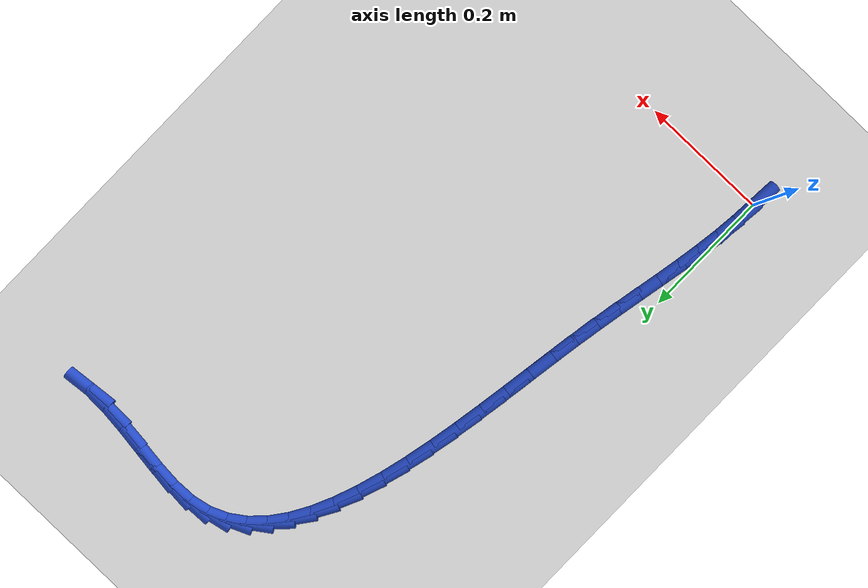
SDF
<sdf version="1.6">
 <world name="default">
  <model name="ground_plane">
   <static>1</static>
   <link name="link">
    <collision name="collision">
     <geometry><plane><normal>0 0 1</normal><size>100 100</size></plane></geometry>
     <surface><friction><ode><mu>100</mu><mu2>50</mu2></ode></friction></surface>
    </collision>
    <visual name="visual">
     <cast_shadows>0</cast_shadows>
     <geometry><plane><normal>0 0 1</normal><size>100 100</size></plane></geometry>
     <material>
      <script><uri>file://media/materials/scripts/gazebo.material</uri><name>Gazebo/WhiteGlow</name></script>
     </material>
    </visual>
   </link>
  </model>
  <model name="line">
   <link name="link_1">
    <pose>0.0022582850308093196 0.03516942774697094 0.01 0 1.57 1.4645341288310958</pose>
    <collision name="collision">
     <geometry><cylinder><radius>0.01</radius><length>0.08</length></cylinder></geometry>
    </collision>
    <visual name="visual">
     <material>
      <script><name>Gazebo/Blue</name><uri>file://media/materials/scripts/gazebo.material</uri></script>
     </material>
     <geometry><cylinder><radius>0.01</radius><length>0.08</length></cylinder></geometry>
    </visual>
   </link>
   <link name="link_2">
    <pose>0.005962830418224047 0.06990041833474252 0.01 0 1.57 1.4299234166727632</pose>
    <collision name="collision">
     <geometry><cylinder><radius>0.01</radius><length>0.08</length></cylinder></geometry>
    </collision>
    <visual name="visual">
     <material>
      <script><name>Gazebo/Blue</name><uri>file://media/materials/scripts/gazebo.material</uri></script>
     </material>
     <geometry><cylinder><radius>0.01</radius><length>0.08</length></cylinder></geometry>
    </visual>
   </link>
   <link name="link_3">
    <pose>0.010868365868213374 0.10449217927784483 0.01 0 1.57 1.4037080650045268</pose>
    <collision name="collision">
     <geometry><cylinder><radius>0.01</radius><length>0.08</length></cylinder></geometry>
    </collision>
    <visual name="visual">
     <material>
      <script><name>Gazebo/Blue</name><uri>file://media/materials/scripts/gazebo.material</uri></script>
     </material>
     <geometry><cylinder><radius>0.01</radius><length>0.08</length></cylinder></geometry>
    </visual>
   </link>
   <link name="link_4">
    <pose>0.016729621086746478 0.139243918090808 0.01 0 1.57 1.386281005507231</pose>
    <collision name="collision">
     <geometry><cylinder><radius>0.01</radius><length>0.08</length></cylinder></geometry>
    </collision>
    <visual name="visual">
     <material>
      <script><name>Gazebo/Blue</name><uri>file://media/materials/scripts/gazebo.material</uri></script>
     </material>
     <geometry><cylinder><radius>0.01</radius><length>0.08</length></cylinder></geometry>
    </visual>
   </link>
   <link name="link_5">
    <pose>0.023301325779792527 0.17445484228816205 0.01 0 1.57 1.377600673530358</pose>
    <collision name="collision">
     <geometry><cylinder><radius>0.01</radius><length>0.08</length></cylinder></geometry>
    </collision>
    <visual name="visual">
     <material>
      <script><name>Gazebo/Blue</name><uri>file://media/materials/scripts/gazebo.material</uri></script>
     </material>
     <geometry><cylinder><radius>0.01</radius><length>0.08</length></cylinder></geometry>
    </visual>
   </link>
   <link name="link_6">
    <pose>0.030338209653320725 0.21042415938443707 0.01 0 1.57 1.3772624265243338</pose>
    <collision name="collision">
     <geometry><cylinder><radius>0.01</radius><length>0.08</length></cylinder></geometry>
    </collision>
    <visual name="visual">
     <material>
      <script><name>Gazebo/Blue</name><uri>file://media/materials/scripts/gazebo.material</uri></script>
     </material>
     <geometry><cylinder><radius>0.01</radius><length>0.08</length></cylinder></geometry>
    </visual>
   </link>
   <link name="link_7">
    <pose>0.03759500241330024 0.24745107689416318 0.01 0 1.57 1.3845806577519995</pose>
    <collision name="collision">
     <geometry><cylinder><radius>0.01</radius><length>0.08</length></cylinder></geometry>
    </collision>
    <visual name="visual">
     <material>
      <script><name>Gazebo/Blue</name><uri>file://media/materials/scripts/gazebo.material</uri></script>
     </material>
     <geometry><cylinder><radius>0.01</radius><length>0.08</length></cylinder></geometry>
    </visual>
   </link>
   <link name="link_8">
    <pose>0.04482643376570025 0.2858348023318704 0.01 0 1.57 1.398498611856168</pose>
    <collision name="collision">
     <geometry><cylinder><radius>0.01</radius><length>0.08</length></cylinder></geometry>
    </collision>
    <visual name="visual">
     <material>
      <script><name>Gazebo/Blue</name><uri>file://media/materials/scripts/gazebo.material</uri></script>
     </material>
     <geometry><cylinder><radius>0.01</radius><length>0.08</length></cylinder></geometry>
    </visual>
   </link>
   <link name="link_9">
    <pose>0.05179271196097982 0.3258655512602931 0.01 0 1.57 1.4123223762062587</pose>
    <collision name="collision">
     <geometry><cylinder><radius>0.01</radius><length>0.08</length></cylinder></geometry>
    </collision>
    <visual name="visual">
     <material>
      <script><name>Gazebo/Blue</name><uri>file://media/materials/scripts/gazebo.material</uri></script>
     </material>
     <geometry><cylinder><radius>0.01</radius><length>0.08</length></cylinder></geometry>
    </visual>
   </link>
   <link name="link_10">
    <pose>0.058448721866371886 0.3675140159167599 0.01 0 1.57 1.4192214395373546</pose>
    <collision name="collision">
     <geometry><cylinder><radius>0.01</radius><length>0.08</length></cylinder></geometry>
    </collision>
    <visual name="visual">
     <material>
      <script><name>Gazebo/Blue</name><uri>file://media/materials/scripts/gazebo.material</uri></script>
     </material>
     <geometry><cylinder><radius>0.01</radius><length>0.08</length></cylinder></geometry>
    </visual>
   </link>
   <link name="link_11">
    <pose>0.06499213408295745 0.41035240357247577 0.01 0 1.57 1.4194965987739743</pose>
    <collision name="collision">
     <geometry><cylinder><radius>0.01</radius><length>0.08</length></cylinder></geometry>
    </collision>
    <visual name="visual">
     <material>
      <script><name>Gazebo/Blue</name><uri>file://media/materials/scripts/gazebo.material</uri></script>
     </material>
     <geometry><cylinder><radius>0.01</radius><length>0.08</length></cylinder></geometry>
    </visual>
   </link>
   <link name="link_12">
    <pose>0.07163586692038312 0.4539278953880295 0.01 0 1.57 1.4134883770372186</pose>
    <collision name="collision">
     <geometry><cylinder><radius>0.01</radius><length>0.08</length></cylinder></geometry>
    </collision>
    <visual name="visual">
     <material>
      <script><name>Gazebo/Blue</name><uri>file://media/materials/scripts/gazebo.material</uri></script>
     </material>
     <geometry><cylinder><radius>0.01</radius><length>0.08</length></cylinder></geometry>
    </visual>
   </link>
   <link name="link_13">
    <pose>0.07859283868829553 0.4977876725240108 0.01 0 1.57 1.4011692170362267</pose>
    <collision name="collision">
     <geometry><cylinder><radius>0.01</radius><length>0.08</length></cylinder></geometry>
    </collision>
    <visual name="visual">
     <material>
      <script><name>Gazebo/Blue</name><uri>file://media/materials/scripts/gazebo.material</uri></script>
     </material>
     <geometry><cylinder><radius>0.01</radius><length>0.08</length></cylinder></geometry>
    </visual>
   </link>
   <link name="link_14">
    <pose>0.08607596769634124 0.5414789161410082 0.01 0 1.57 1.38216224565192</pose>
    <collision name="collision">
     <geometry><cylinder><radius>0.01</radius><length>0.08</length></cylinder></geometry>
    </collision>
    <visual name="visual">
     <material>
      <script><name>Gazebo/Blue</name><uri>file://media/materials/scripts/gazebo.material</uri></script>
     </material>
     <geometry><cylinder><radius>0.01</radius><length>0.08</length></cylinder></geometry>
    </visual>
   </link>
   <link name="link_15">
    <pose>0.0942981722541669 0.5845488073996107 0.01 0 1.57 1.3557196412298682</pose>
    <collision name="collision">
     <geometry><cylinder><radius>0.01</radius><length>0.08</length></cylinder></geometry>
    </collision>
    <visual name="visual">
     <material>
      <script><name>Gazebo/Blue</name><uri>file://media/materials/scripts/gazebo.material</uri></script>
     </material>
     <geometry><cylinder><radius>0.01</radius><length>0.08</length></cylinder></geometry>
    </visual>
   </link>
   <link name="link_16">
    <pose>0.10347237067141912 0.6265445274604079 0.01 0 1.57 1.320663005502969</pose>
    <collision name="collision">
     <geometry><cylinder><radius>0.01</radius><length>0.08</length></cylinder></geometry>
    </collision>
    <visual name="visual">
     <material>
      <script><name>Gazebo/Blue</name><uri>file://media/materials/scripts/gazebo.material</uri></script>
     </material>
     <geometry><cylinder><radius>0.01</radius><length>0.08</length></cylinder></geometry>
    </visual>
   </link>
   <link name="link_17">
    <pose>0.11381148125774447 0.6670132574839885 0.01 0 1.57 1.2752860189761903</pose>
    <collision name="collision">
     <geometry><cylinder><radius>0.01</radius><length>0.08</length></cylinder></geometry>
    </collision>
    <visual name="visual">
     <material>
      <script><name>Gazebo/Blue</name><uri>file://media/materials/scripts/gazebo.material</uri></script>
     </material>
     <geometry><cylinder><radius>0.01</radius><length>0.08</length></cylinder></geometry>
    </visual>
   </link>
   <link name="link_18">
    <pose>0.12552842232278957 0.7055021786309416 0.01 0 1.57 1.2172250605914776</pose>
    <collision name="collision">
     <geometry><cylinder><radius>0.01</radius><length>0.08</length></cylinder></geometry>
    </collision>
    <visual name="visual">
     <material>
      <script><name>Gazebo/Blue</name><uri>file://media/materials/scripts/gazebo.material</uri></script>
     </material>
     <geometry><cylinder><radius>0.01</radius><length>0.08</length></cylinder></geometry>
    </visual>
   </link>
   <link name="link_19">
    <pose>0.1388361121762011 0.7415584720618565 0.01 0 1.57 1.1433271860363068</pose>
    <collision name="collision">
     <geometry><cylinder><radius>0.01</radius><length>0.08</length></cylinder></geometry>
    </collision>
    <visual name="visual">
     <material>
      <script><name>Gazebo/Blue</name><uri>file://media/materials/scripts/gazebo.material</uri></script>
     </material>
     <geometry><cylinder><radius>0.01</radius><length>0.08</length></cylinder></geometry>
    </visual>
   </link>
   <link name="link_20">
    <pose>0.1539474691276256 0.7747293189373222 0.01 0 1.57 1.0496120278835792</pose>
    <collision name="collision">
     <geometry><cylinder><radius>0.01</radius><length>0.08</length></cylinder></geometry>
    </collision>
    <visual name="visual">
     <material>
      <script><name>Gazebo/Blue</name><uri>file://media/materials/scripts/gazebo.material</uri></script>
     </material>
     <geometry><cylinder><radius>0.01</radius><length>0.08</length></cylinder></geometry>
    </visual>
   </link>
   <link name="link_21">
    <pose>0.17107541148670966 0.8045619004179276 0.01 0 1.57 0.9315772098061283</pose>
    <collision name="collision">
     <geometry><cylinder><radius>0.01</radius><length>0.08</length></cylinder></geometry>
    </collision>
    <visual name="visual">
     <material>
      <script><name>Gazebo/Blue</name><uri>file://media/materials/scripts/gazebo.material</uri></script>
     </material>
     <geometry><cylinder><radius>0.01</radius><length>0.08</length></cylinder></geometry>
    </visual>
   </link>
   <link name="link_22">
    <pose>0.19043285756309994 0.8306033976642618 0.01 0 1.57 0.7853460059880488</pose>
    <collision name="collision">
     <geometry><cylinder><radius>0.01</radius><length>0.08</length></cylinder></geometry>
    </collision>
    <visual name="visual">
     <material>
      <script><name>Gazebo/Blue</name><uri>file://media/materials/scripts/gazebo.material</uri></script>
     </material>
     <geometry><cylinder><radius>0.01</radius><length>0.08</length></cylinder></geometry>
    </visual>
   </link>
   <link name="link_23">
    <pose>0.21223272566644308 0.8524009918369142 0.01 0 1.57 0.6102380234872056</pose>
    <collision name="collision">
     <geometry><cylinder><radius>0.01</radius><length>0.08</length></cylinder></geometry>
    </collision>
    <visual name="visual">
     <material>
      <script><name>Gazebo/Blue</name><uri>file://media/materials/scripts/gazebo.material</uri></script>
     </material>
     <geometry><cylinder><radius>0.01</radius><length>0.08</length></cylinder></geometry>
    </visual>
   </link>
   <link name="link_24">
    <pose>0.23668793410638558 0.8695018640964738 0.01 0 1.57 0.4123279480872916</pose>
    <collision name="collision">
     <geometry><cylinder><radius>0.01</radius><length>0.08</length></cylinder></geometry>
    </collision>
    <visual name="visual">
     <material>
      <script><name>Gazebo/Blue</name><uri>file://media/materials/scripts/gazebo.material</uri></script>
     </material>
     <geometry><cylinder><radius>0.01</radius><length>0.08</length></cylinder></geometry>
    </visual>
   </link>
   <link name="link_25">
    <pose>0.2640114011925742 0.8814531956035295 0.01 0 1.57 0.20617487817737432</pose>
    <collision name="collision">
     <geometry><cylinder><radius>0.01</radius><length>0.08</length></cylinder></geometry>
    </collision>
    <visual name="visual">
     <material>
      <script><name>Gazebo/Blue</name><uri>file://media/materials/scripts/gazebo.material</uri></script>
     </material>
     <geometry><cylinder><radius>0.01</radius><length>0.08</length></cylinder></geometry>
    </visual>
   </link>
   <link name="link_26">
    <pose>0.29441197622579507 0.8878113781816854 0.01 0 1.57 0.0316262559008546</pose>
    <collision name="collision">
     <geometry><cylinder><radius>0.01</radius><length>0.08</length></cylinder></geometry>
    </collision>
    <visual name="visual">
     <material>
      <script><name>Gazebo/Blue</name><uri>file://media/materials/scripts/gazebo.material</uri></script>
     </material>
     <geometry><cylinder><radius>0.01</radius><length>0.08</length></cylinder></geometry>
    </visual>
   </link>
   <link name="link_27">
    <pose>0.32777422631750425 0.8888668531664 0.01 0 1.57 -0.0755919660958112</pose>
    <collision name="collision">
     <geometry><cylinder><radius>0.01</radius><length>0.08</length></cylinder></geometry>
    </collision>
    <visual name="visual">
     <material>
      <script><name>Gazebo/Blue</name><uri>file://media/materials/scripts/gazebo.material</uri></script>
     </material>
     <geometry><cylinder><radius>0.01</radius><length>0.08</length></cylinder></geometry>
    </visual>
   </link>
   <link name="link_28">
    <pose>0.36342761662564976 0.8861665981180878 0.01 0 1.57 -0.12787966685450738</pose>
    <collision name="collision">
     <geometry><cylinder><radius>0.01</radius><length>0.08</length></cylinder></geometry>
    </collision>
    <visual name="visual">
     <material>
      <script><name>Gazebo/Blue</name><uri>file://media/materials/scripts/gazebo.material</uri></script>
     </material>
     <geometry><cylinder><radius>0.01</radius><length>0.08</length></cylinder></geometry>
    </visual>
   </link>
   <link name="link_29">
    <pose>0.40064715538259443 0.8813808600240974 0.01 0 1.57 -0.13580832637252646</pose>
    <collision name="collision">
     <geometry><cylinder><radius>0.01</radius><length>0.08</length></cylinder></geometry>
    </collision>
    <visual name="visual">
     <material>
      <script><name>Gazebo/Blue</name><uri>file://media/materials/scripts/gazebo.material</uri></script>
     </material>
     <geometry><cylinder><radius>0.01</radius><length>0.08</length></cylinder></geometry>
    </visual>
   </link>
   <link name="link_30">
    <pose>0.43870785082070085 0.8761798858717752 0.01 0 1.57 -0.10299434268488782</pose>
    <collision name="collision">
     <geometry><cylinder><radius>0.01</radius><length>0.08</length></cylinder></geometry>
    </collision>
    <visual name="visual">
     <material>
      <script><name>Gazebo/Blue</name><uri>file://media/materials/scripts/gazebo.material</uri></script>
     </material>
     <geometry><cylinder><radius>0.01</radius><length>0.08</length></cylinder></geometry>
    </visual>
   </link>
   <link name="link_31">
    <pose>0.4768847111723319 0.872233922648469 0.01 0 1.57 -0.027162834129937027</pose>
    <collision name="collision">
     <geometry><cylinder><radius>0.01</radius><length>0.08</length></cylinder></geometry>
    </collision>
    <visual name="visual">
     <material>
      <script><name>Gazebo/Blue</name><uri>file://media/materials/scripts/gazebo.material</uri></script>
     </material>
     <geometry><cylinder><radius>0.01</radius><length>0.08</length></cylinder></geometry>
    </visual>
   </link>
   <link name="link_32">
    <pose>0.51445274466985 0.8712132173415266 0.01 0 1.57 0.09833940239529257</pose>
    <collision name="collision">
     <geometry><cylinder><radius>0.01</radius><length>0.08</length></cylinder></geometry>
    </collision>
    <visual name="visual">
     <material>
      <script><name>Gazebo/Blue</name><uri>file://media/materials/scripts/gazebo.material</uri></script>
     </material>
     <geometry><cylinder><radius>0.01</radius><length>0.08</length></cylinder></geometry>
    </visual>
   </link>
   <link name="link_200">
    <pose>-6.938893903907228e-18 6.245004513516506e-17 0.01 0 1.57 1.5053151690832343</pose>
    <collision name="collision">
     <geometry><cylinder><radius>0.01</radius><length>0.08</length></cylinder></geometry>
    </collision>
    <visual name="visual">
     <material>
      <script><name>Gazebo/Blue</name><uri>file://media/materials/scripts/gazebo.material</uri></script>
     </material>
     <geometry><cylinder><radius>0.01</radius><length>0.08</length></cylinder></geometry>
    </visual>
   </link>
   <link name="link_201">
    <pose>0.002300597293562046 0.03508350005256637 0.01 0 1.57 1.5053151690832345</pose>
    <collision name="collision">
     <geometry><cylinder><radius>0.01</radius><length>0.08</length></cylinder></geometry>
    </collision>
    <visual name="visual">
     <material>
      <script><name>Gazebo/Blue</name><uri>file://media/materials/scripts/gazebo.material</uri></script>
     </material>
     <geometry><cylinder><radius>0.01</radius><length>0.08</length></cylinder></geometry>
    </visual>
   </link>
  </model>
 </world>
</sdf>
